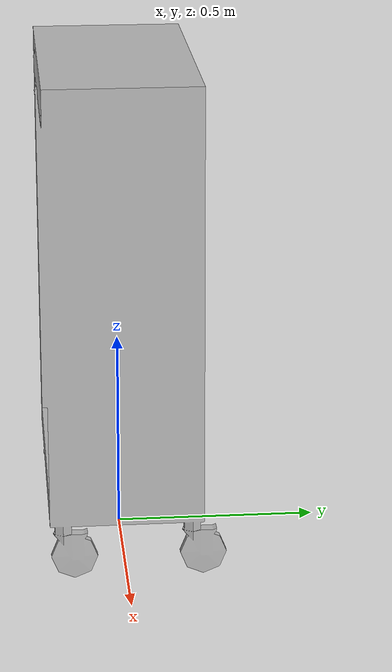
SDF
<?xml version='1.0' encoding='utf-8'?>
<sdf version="1.6">
    <model name="ScrubsTrolley">
        <static>true</static>
        <link name="body">
            <pose>0 0 0 0 0 0</pose>
            <visual name="visual">
                <geometry>
                    <mesh>
                        <uri>https://fuel.gazebosim.org/1.0/openrobotics/models/scrubstrolley/3/files/meshes/ScrubsTrolley.obj</uri>
                    </mesh>
                </geometry>
            </visual>
            <collision name="collision">
                <geometry>
                    <mesh>
                        <uri>https://fuel.gazebosim.org/1.0/openrobotics/models/scrubstrolley/3/files/meshes/ScrubsTrolley_Col.obj</uri>
                    </mesh>
                </geometry>
            </collision>
        </link>
    </model>
</sdf>
